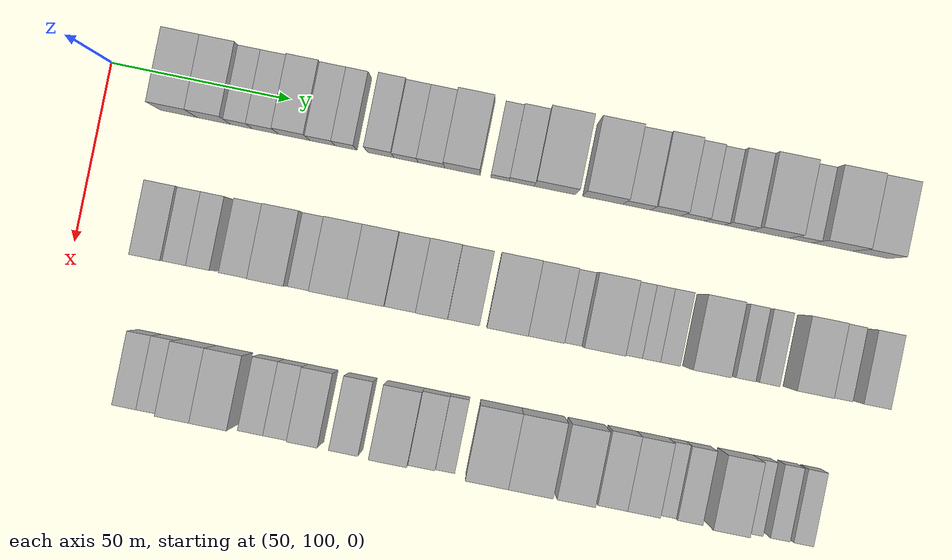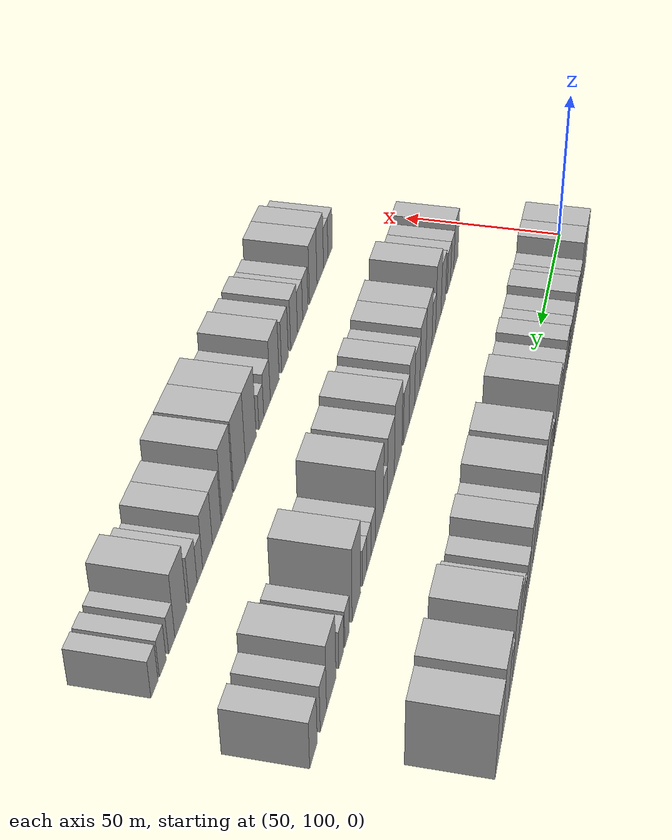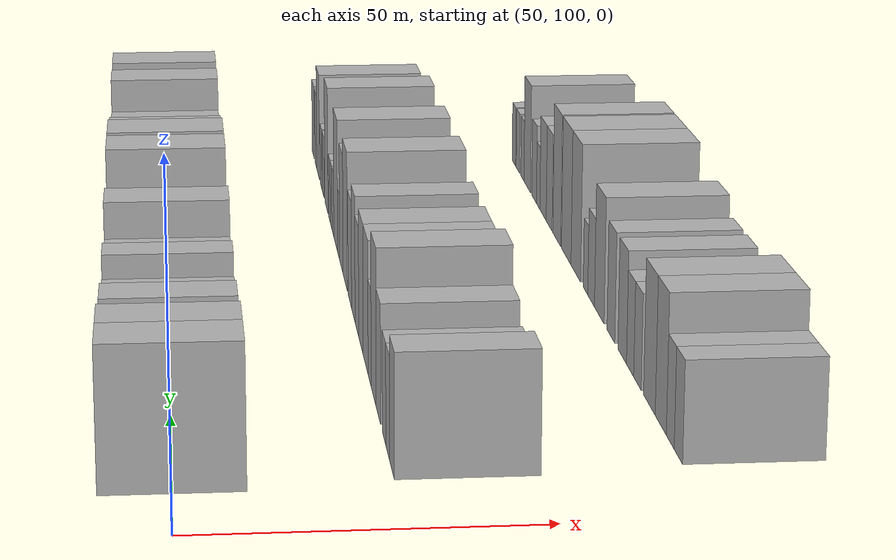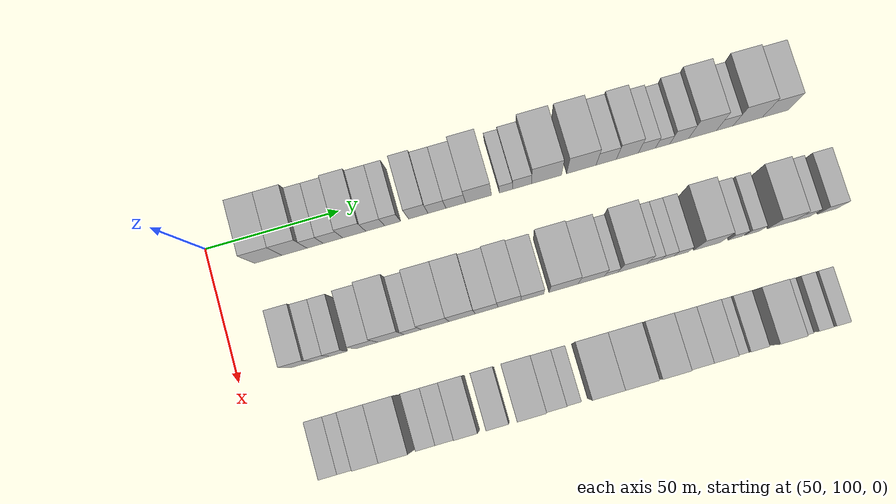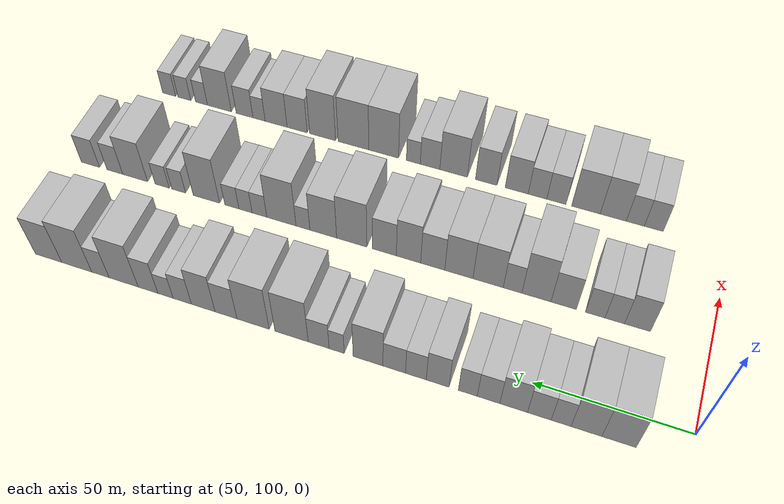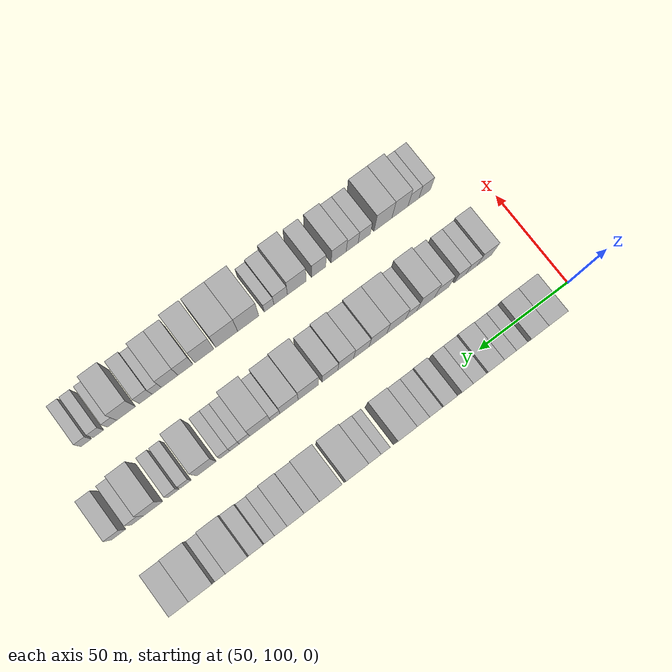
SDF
<sdf version="1.6">
 <world name="default">
  <model name="building_79">
   <static>1</static>
   <pose>50.0000 121.1111 0 0.000000 0.000000 0.000000</pose>
   <link name="link">
    <pose>0 0 10.50 0 0 0</pose>
    <collision name="collision"><geometry><box><size>20.0000 10.2820 21.0000</size></box></geometry></collision>
    <visual name="visual">
     <cast_shadows>0</cast_shadows>
     <geometry><box><size>20.0000 10.2820 21.0000</size></box></geometry>
     <material>
      <script>
       <uri>model://HANNAS_wall/materials/scripts</uri>
       <uri>model://HANNAS_wall/materials/textures</uri>
       <name>vrc/HANNAS_wall</name>
      </script>
     </material>
    </visual>
   </link>
  </model>
  <model name="building_80">
   <static>1</static>
   <pose>50.0000 130.9271 0 0.000000 0.000000 0.000000</pose>
   <link name="link">
    <pose>0 0 10.50 0 0 0</pose>
    <collision name="collision"><geometry><box><size>20.0000 9.3499 21.0000</size></box></geometry></collision>
    <visual name="visual">
     <cast_shadows>0</cast_shadows>
     <geometry><box><size>20.0000 9.3499 21.0000</size></box></geometry>
     <material>
      <script>
       <uri>model://HANNAS_wall/materials/scripts</uri>
       <uri>model://HANNAS_wall/materials/textures</uri>
       <name>vrc/HANNAS_wall</name>
      </script>
     </material>
    </visual>
   </link>
  </model>
  <model name="building_81">
   <static>1</static>
   <pose>50.0000 138.6464 0 0.000000 0.000000 0.000000</pose>
   <link name="link">
    <pose>0 0 7.50 0 0 0</pose>
    <collision name="collision"><geometry><box><size>20.0000 6.0887 15.0000</size></box></geometry></collision>
    <visual name="visual">
     <cast_shadows>0</cast_shadows>
     <geometry><box><size>20.0000 6.0887 15.0000</size></box></geometry>
     <material>
      <script>
       <uri>model://HANNAS_wall/materials/scripts</uri>
       <uri>model://HANNAS_wall/materials/textures</uri>
       <name>vrc/HANNAS_wall</name>
      </script>
     </material>
    </visual>
   </link>
  </model>
  <model name="building_82">
   <static>1</static>
   <pose>50.0000 145.3490 0 0.000000 0.000000 0.000000</pose>
   <link name="link">
    <pose>0 0 7.50 0 0 0</pose>
    <collision name="collision"><geometry><box><size>20.0000 7.3165 15.0000</size></box></geometry></collision>
    <visual name="visual">
     <cast_shadows>0</cast_shadows>
     <geometry><box><size>20.0000 7.3165 15.0000</size></box></geometry>
     <material>
      <script>
       <uri>model://HANNAS_wall/materials/scripts</uri>
       <uri>model://HANNAS_wall/materials/textures</uri>
       <name>vrc/HANNAS_wall</name>
      </script>
     </material>
    </visual>
   </link>
  </model>
  <model name="building_83">
   <static>1</static>
   <pose>50.0000 153.3246 0 0.000000 0.000000 0.000000</pose>
   <link name="link">
    <pose>0 0 9.00 0 0 0</pose>
    <collision name="collision"><geometry><box><size>20.0000 8.6346 18.0000</size></box></geometry></collision>
    <visual name="visual">
     <cast_shadows>0</cast_shadows>
     <geometry><box><size>20.0000 8.6346 18.0000</size></box></geometry>
     <material>
      <script>
       <uri>model://HANNAS_wall/materials/scripts</uri>
       <uri>model://HANNAS_wall/materials/textures</uri>
       <name>vrc/HANNAS_wall</name>
      </script>
     </material>
    </visual>
   </link>
  </model>
  <model name="building_84">
   <static>1</static>
   <pose>50.0000 161.2024 0 0.000000 0.000000 0.000000</pose>
   <link name="link">
    <pose>0 0 7.50 0 0 0</pose>
    <collision name="collision"><geometry><box><size>20.0000 7.1211 15.0000</size></box></geometry></collision>
    <visual name="visual">
     <cast_shadows>0</cast_shadows>
     <geometry><box><size>20.0000 7.1211 15.0000</size></box></geometry>
     <material>
      <script>
       <uri>model://HANNAS_wall/materials/scripts</uri>
       <uri>model://HANNAS_wall/materials/textures</uri>
       <name>vrc/HANNAS_wall</name>
      </script>
     </material>
    </visual>
   </link>
  </model>
  <model name="building_85">
   <static>1</static>
   <pose>50.0000 167.7683 0 0.000000 0.000000 0.000000</pose>
   <link name="link">
    <pose>0 0 7.50 0 0 0</pose>
    <collision name="collision"><geometry><box><size>20.0000 6.0107 15.0000</size></box></geometry></collision>
    <visual name="visual">
     <cast_shadows>0</cast_shadows>
     <geometry><box><size>20.0000 6.0107 15.0000</size></box></geometry>
     <material>
      <script>
       <uri>model://HANNAS_wall/materials/scripts</uri>
       <uri>model://HANNAS_wall/materials/textures</uri>
       <name>vrc/HANNAS_wall</name>
      </script>
     </material>
    </visual>
   </link>
  </model>
  <model name="building_86">
   <static>1</static>
   <pose>50.0000 177.4359 0 0.000000 0.000000 0.000000</pose>
   <link name="link">
    <pose>0 0 9.00 0 0 0</pose>
    <collision name="collision"><geometry><box><size>20.0000 7.3245 18.0000</size></box></geometry></collision>
    <visual name="visual">
     <cast_shadows>0</cast_shadows>
     <geometry><box><size>20.0000 7.3245 18.0000</size></box></geometry>
     <material>
      <script>
       <uri>model://HANNAS_wall/materials/scripts</uri>
       <uri>model://HANNAS_wall/materials/textures</uri>
       <name>vrc/HANNAS_wall</name>
      </script>
     </material>
    </visual>
   </link>
  </model>
  <model name="building_87">
   <static>1</static>
   <pose>50.0000 184.4694 0 0.000000 0.000000 0.000000</pose>
   <link name="link">
    <pose>0 0 7.50 0 0 0</pose>
    <collision name="collision"><geometry><box><size>20.0000 6.7424 15.0000</size></box></geometry></collision>
    <visual name="visual">
     <cast_shadows>0</cast_shadows>
     <geometry><box><size>20.0000 6.7424 15.0000</size></box></geometry>
     <material>
      <script>
       <uri>model://HANNAS_wall/materials/scripts</uri>
       <uri>model://HANNAS_wall/materials/textures</uri>
       <name>vrc/HANNAS_wall</name>
      </script>
     </material>
    </visual>
   </link>
  </model>
  <model name="building_88">
   <static>1</static>
   <pose>50.0000 191.5451 0 0.000000 0.000000 0.000000</pose>
   <link name="link">
    <pose>0 0 7.50 0 0 0</pose>
    <collision name="collision"><geometry><box><size>20.0000 7.4091 15.0000</size></box></geometry></collision>
    <visual name="visual">
     <cast_shadows>0</cast_shadows>
     <geometry><box><size>20.0000 7.4091 15.0000</size></box></geometry>
     <material>
      <script>
       <uri>model://HANNAS_wall/materials/scripts</uri>
       <uri>model://HANNAS_wall/materials/textures</uri>
       <name>vrc/HANNAS_wall</name>
      </script>
     </material>
    </visual>
   </link>
  </model>
  <model name="building_89">
   <static>1</static>
   <pose>50.0000 200.1826 0 0.000000 0.000000 0.000000</pose>
   <link name="link">
    <pose>0 0 10.50 0 0 0</pose>
    <collision name="collision"><geometry><box><size>20.0000 9.8660 21.0000</size></box></geometry></collision>
    <visual name="visual">
     <cast_shadows>0</cast_shadows>
     <geometry><box><size>20.0000 9.8660 21.0000</size></box></geometry>
     <material>
      <script>
       <uri>model://HANNAS_wall/materials/scripts</uri>
       <uri>model://HANNAS_wall/materials/textures</uri>
       <name>vrc/HANNAS_wall</name>
      </script>
     </material>
    </visual>
   </link>
  </model>
  <model name="building_90">
   <static>1</static>
   <pose>50.0000 210.6461 0 0.000000 0.000000 0.000000</pose>
   <link name="link">
    <pose>0 0 6.00 0 0 0</pose>
    <collision name="collision"><geometry><box><size>20.0000 5.0610 12.0000</size></box></geometry></collision>
    <visual name="visual">
     <cast_shadows>0</cast_shadows>
     <geometry><box><size>20.0000 5.0610 12.0000</size></box></geometry>
     <material>
      <script>
       <uri>model://HANNAS_wall/materials/scripts</uri>
       <uri>model://HANNAS_wall/materials/textures</uri>
       <name>vrc/HANNAS_wall</name>
      </script>
     </material>
    </visual>
   </link>
  </model>
  <model name="building_91">
   <static>1</static>
   <pose>50.0000 216.7208 0 0.000000 0.000000 0.000000</pose>
   <link name="link">
    <pose>0 0 7.50 0 0 0</pose>
    <collision name="collision"><geometry><box><size>20.0000 7.0883 15.0000</size></box></geometry></collision>
    <visual name="visual">
     <cast_shadows>0</cast_shadows>
     <geometry><box><size>20.0000 7.0883 15.0000</size></box></geometry>
     <material>
      <script>
       <uri>model://HANNAS_wall/materials/scripts</uri>
       <uri>model://HANNAS_wall/materials/textures</uri>
       <name>vrc/HANNAS_wall</name>
      </script>
     </material>
    </visual>
   </link>
  </model>
  <model name="building_92">
   <static>1</static>
   <pose>50.0000 225.9743 0 0.000000 0.000000 0.000000</pose>
   <link name="link">
    <pose>0 0 12.00 0 0 0</pose>
    <collision name="collision"><geometry><box><size>20.0000 11.4187 24.0000</size></box></geometry></collision>
    <visual name="visual">
     <cast_shadows>0</cast_shadows>
     <geometry><box><size>20.0000 11.4187 24.0000</size></box></geometry>
     <material>
      <script>
       <uri>model://HANNAS_wall/materials/scripts</uri>
       <uri>model://HANNAS_wall/materials/textures</uri>
       <name>vrc/HANNAS_wall</name>
      </script>
     </material>
    </visual>
   </link>
  </model>
  <model name="building_93">
   <static>1</static>
   <pose>50.0000 239.2948 0 0.000000 0.000000 0.000000</pose>
   <link name="link">
    <pose>0 0 12.00 0 0 0</pose>
    <collision name="collision"><geometry><box><size>20.0000 11.2223 24.0000</size></box></geometry></collision>
    <visual name="visual">
     <cast_shadows>0</cast_shadows>
     <geometry><box><size>20.0000 11.2223 24.0000</size></box></geometry>
     <material>
      <script>
       <uri>model://HANNAS_wall/materials/scripts</uri>
       <uri>model://HANNAS_wall/materials/textures</uri>
       <name>vrc/HANNAS_wall</name>
      </script>
     </material>
    </visual>
   </link>
  </model>
  <model name="building_94">
   <static>1</static>
   <pose>50.0000 248.7724 0 0.000000 0.000000 0.000000</pose>
   <link name="link">
    <pose>0 0 9.00 0 0 0</pose>
    <collision name="collision"><geometry><box><size>20.0000 7.7330 18.0000</size></box></geometry></collision>
    <visual name="visual">
     <cast_shadows>0</cast_shadows>
     <geometry><box><size>20.0000 7.7330 18.0000</size></box></geometry>
     <material>
      <script>
       <uri>model://HANNAS_wall/materials/scripts</uri>
       <uri>model://HANNAS_wall/materials/textures</uri>
       <name>vrc/HANNAS_wall</name>
      </script>
     </material>
    </visual>
   </link>
  </model>
  <model name="building_95">
   <static>1</static>
   <pose>50.0000 256.8523 0 0.000000 0.000000 0.000000</pose>
   <link name="link">
    <pose>0 0 10.50 0 0 0</pose>
    <collision name="collision"><geometry><box><size>20.0000 8.4268 21.0000</size></box></geometry></collision>
    <visual name="visual">
     <cast_shadows>0</cast_shadows>
     <geometry><box><size>20.0000 8.4268 21.0000</size></box></geometry>
     <material>
      <script>
       <uri>model://HANNAS_wall/materials/scripts</uri>
       <uri>model://HANNAS_wall/materials/textures</uri>
       <name>vrc/HANNAS_wall</name>
      </script>
     </material>
    </visual>
   </link>
  </model>
  <model name="building_96">
   <static>1</static>
   <pose>50.0000 264.3594 0 0.000000 0.000000 0.000000</pose>
   <link name="link">
    <pose>0 0 7.50 0 0 0</pose>
    <collision name="collision"><geometry><box><size>20.0000 6.5873 15.0000</size></box></geometry></collision>
    <visual name="visual">
     <cast_shadows>0</cast_shadows>
     <geometry><box><size>20.0000 6.5873 15.0000</size></box></geometry>
     <material>
      <script>
       <uri>model://HANNAS_wall/materials/scripts</uri>
       <uri>model://HANNAS_wall/materials/textures</uri>
       <name>vrc/HANNAS_wall</name>
      </script>
     </material>
    </visual>
   </link>
  </model>
  <model name="building_97">
   <static>1</static>
   <pose>50.0000 270.4090 0 0.000000 0.000000 0.000000</pose>
   <link name="link">
    <pose>0 0 6.00 0 0 0</pose>
    <collision name="collision"><geometry><box><size>20.0000 5.5120 12.0000</size></box></geometry></collision>
    <visual name="visual">
     <cast_shadows>0</cast_shadows>
     <geometry><box><size>20.0000 5.5120 12.0000</size></box></geometry>
     <material>
      <script>
       <uri>model://HANNAS_wall/materials/scripts</uri>
       <uri>model://HANNAS_wall/materials/textures</uri>
       <name>vrc/HANNAS_wall</name>
      </script>
     </material>
    </visual>
   </link>
  </model>
  <model name="building_98">
   <static>1</static>
   <pose>50.0000 276.7768 0 0.000000 0.000000 0.000000</pose>
   <link name="link">
    <pose>0 0 9.00 0 0 0</pose>
    <collision name="collision"><geometry><box><size>20.0000 7.2236 18.0000</size></box></geometry></collision>
    <visual name="visual">
     <cast_shadows>0</cast_shadows>
     <geometry><box><size>20.0000 7.2236 18.0000</size></box></geometry>
     <material>
      <script>
       <uri>model://HANNAS_wall/materials/scripts</uri>
       <uri>model://HANNAS_wall/materials/textures</uri>
       <name>vrc/HANNAS_wall</name>
      </script>
     </material>
    </visual>
   </link>
  </model>
  <model name="building_99">
   <static>1</static>
   <pose>50.0000 285.7733 0 0.000000 0.000000 0.000000</pose>
   <link name="link">
    <pose>0 0 12.00 0 0 0</pose>
    <collision name="collision"><geometry><box><size>20.0000 10.7693 24.0000</size></box></geometry></collision>
    <visual name="visual">
     <cast_shadows>0</cast_shadows>
     <geometry><box><size>20.0000 10.7693 24.0000</size></box></geometry>
     <material>
      <script>
       <uri>model://HANNAS_wall/materials/scripts</uri>
       <uri>model://HANNAS_wall/materials/textures</uri>
       <name>vrc/HANNAS_wall</name>
      </script>
     </material>
    </visual>
   </link>
  </model>
  <model name="building_100">
   <static>1</static>
   <pose>50.0000 294.3728 0 0.000000 0.000000 0.000000</pose>
   <link name="link">
    <pose>0 0 7.50 0 0 0</pose>
    <collision name="collision"><geometry><box><size>20.0000 6.4296 15.0000</size></box></geometry></collision>
    <visual name="visual">
     <cast_shadows>0</cast_shadows>
     <geometry><box><size>20.0000 6.4296 15.0000</size></box></geometry>
     <material>
      <script>
       <uri>model://HANNAS_wall/materials/scripts</uri>
       <uri>model://HANNAS_wall/materials/textures</uri>
       <name>vrc/HANNAS_wall</name>
      </script>
     </material>
    </visual>
   </link>
  </model>
  <model name="building_101">
   <static>1</static>
   <pose>50.0000 303.2512 0 0.000000 0.000000 0.000000</pose>
   <link name="link">
    <pose>0 0 12.00 0 0 0</pose>
    <collision name="collision"><geometry><box><size>20.0000 11.3271 24.0000</size></box></geometry></collision>
    <visual name="visual">
     <cast_shadows>0</cast_shadows>
     <geometry><box><size>20.0000 11.3271 24.0000</size></box></geometry>
     <material>
      <script>
       <uri>model://HANNAS_wall/materials/scripts</uri>
       <uri>model://HANNAS_wall/materials/textures</uri>
       <name>vrc/HANNAS_wall</name>
      </script>
     </material>
    </visual>
   </link>
  </model>
  <model name="building_102">
   <static>1</static>
   <pose>50.0000 313.9579 0 0.000000 0.000000 0.000000</pose>
   <link name="link">
    <pose>0 0 10.50 0 0 0</pose>
    <collision name="collision"><geometry><box><size>20.0000 10.0864 21.0000</size></box></geometry></collision>
    <visual name="visual">
     <cast_shadows>0</cast_shadows>
     <geometry><box><size>20.0000 10.0864 21.0000</size></box></geometry>
     <material>
      <script>
       <uri>model://HANNAS_wall/materials/scripts</uri>
       <uri>model://HANNAS_wall/materials/textures</uri>
       <name>vrc/HANNAS_wall</name>
      </script>
     </material>
    </visual>
   </link>
  </model>
  <model name="building_220">
   <static>1</static>
   <pose>90.0000 123.2064 0 0.000000 0.000000 0.000000</pose>
   <link name="link">
    <pose>0 0 9.00 0 0 0</pose>
    <collision name="collision"><geometry><box><size>20.0000 8.3586 18.0000</size></box></geometry></collision>
    <visual name="visual">
     <cast_shadows>0</cast_shadows>
     <geometry><box><size>20.0000 8.3586 18.0000</size></box></geometry>
     <material>
      <script>
       <uri>model://HANNAS_wall/materials/scripts</uri>
       <uri>model://HANNAS_wall/materials/textures</uri>
       <name>vrc/HANNAS_wall</name>
      </script>
     </material>
    </visual>
   </link>
  </model>
  <model name="building_221">
   <static>1</static>
   <pose>90.0000 130.5374 0 0.000000 0.000000 0.000000</pose>
   <link name="link">
    <pose>0 0 7.50 0 0 0</pose>
    <collision name="collision"><geometry><box><size>20.0000 6.3033 15.0000</size></box></geometry></collision>
    <visual name="visual">
     <cast_shadows>0</cast_shadows>
     <geometry><box><size>20.0000 6.3033 15.0000</size></box></geometry>
     <material>
      <script>
       <uri>model://HANNAS_wall/materials/scripts</uri>
       <uri>model://HANNAS_wall/materials/textures</uri>
       <name>vrc/HANNAS_wall</name>
      </script>
     </material>
    </visual>
   </link>
  </model>
  <model name="building_222">
   <static>1</static>
   <pose>90.0000 136.8858 0 0.000000 0.000000 0.000000</pose>
   <link name="link">
    <pose>0 0 7.50 0 0 0</pose>
    <collision name="collision"><geometry><box><size>20.0000 6.3935 15.0000</size></box></geometry></collision>
    <visual name="visual">
     <cast_shadows>0</cast_shadows>
     <geometry><box><size>20.0000 6.3935 15.0000</size></box></geometry>
     <material>
      <script>
       <uri>model://HANNAS_wall/materials/scripts</uri>
       <uri>model://HANNAS_wall/materials/textures</uri>
       <name>vrc/HANNAS_wall</name>
      </script>
     </material>
    </visual>
   </link>
  </model>
  <model name="building_223">
   <static>1</static>
   <pose>90.0000 147.2890 0 0.000000 0.000000 0.000000</pose>
   <link name="link">
    <pose>0 0 9.00 0 0 0</pose>
    <collision name="collision"><geometry><box><size>20.0000 8.4129 18.0000</size></box></geometry></collision>
    <visual name="visual">
     <cast_shadows>0</cast_shadows>
     <geometry><box><size>20.0000 8.4129 18.0000</size></box></geometry>
     <material>
      <script>
       <uri>model://HANNAS_wall/materials/scripts</uri>
       <uri>model://HANNAS_wall/materials/textures</uri>
       <name>vrc/HANNAS_wall</name>
      </script>
     </material>
    </visual>
   </link>
  </model>
  <model name="building_224">
   <static>1</static>
   <pose>90.0000 156.3557 0 0.000000 0.000000 0.000000</pose>
   <link name="link">
    <pose>0 0 12.00 0 0 0</pose>
    <collision name="collision"><geometry><box><size>20.0000 9.7206 24.0000</size></box></geometry></collision>
    <visual name="visual">
     <cast_shadows>0</cast_shadows>
     <geometry><box><size>20.0000 9.7206 24.0000</size></box></geometry>
     <material>
      <script>
       <uri>model://HANNAS_wall/materials/scripts</uri>
       <uri>model://HANNAS_wall/materials/textures</uri>
       <name>vrc/HANNAS_wall</name>
      </script>
     </material>
    </visual>
   </link>
  </model>
  <model name="building_225">
   <static>1</static>
   <pose>90.0000 164.3611 0 0.000000 0.000000 0.000000</pose>
   <link name="link">
    <pose>0 0 7.50 0 0 0</pose>
    <collision name="collision"><geometry><box><size>20.0000 6.2902 15.0000</size></box></geometry></collision>
    <visual name="visual">
     <cast_shadows>0</cast_shadows>
     <geometry><box><size>20.0000 6.2902 15.0000</size></box></geometry>
     <material>
      <script>
       <uri>model://HANNAS_wall/materials/scripts</uri>
       <uri>model://HANNAS_wall/materials/textures</uri>
       <name>vrc/HANNAS_wall</name>
      </script>
     </material>
    </visual>
   </link>
  </model>
  <model name="building_226">
   <static>1</static>
   <pose>90.0000 172.6828 0 0.000000 0.000000 0.000000</pose>
   <link name="link">
    <pose>0 0 10.50 0 0 0</pose>
    <collision name="collision"><geometry><box><size>20.0000 10.3533 21.0000</size></box></geometry></collision>
    <visual name="visual">
     <cast_shadows>0</cast_shadows>
     <geometry><box><size>20.0000 10.3533 21.0000</size></box></geometry>
     <material>
      <script>
       <uri>model://HANNAS_wall/materials/scripts</uri>
       <uri>model://HANNAS_wall/materials/textures</uri>
       <name>vrc/HANNAS_wall</name>
      </script>
     </material>
    </visual>
   </link>
  </model>
  <model name="building_227">
   <static>1</static>
   <pose>90.0000 182.7283 0 0.000000 0.000000 0.000000</pose>
   <link name="link">
    <pose>0 0 10.50 0 0 0</pose>
    <collision name="collision"><geometry><box><size>20.0000 9.7376 21.0000</size></box></geometry></collision>
    <visual name="visual">
     <cast_shadows>0</cast_shadows>
     <geometry><box><size>20.0000 9.7376 21.0000</size></box></geometry>
     <material>
      <script>
       <uri>model://HANNAS_wall/materials/scripts</uri>
       <uri>model://HANNAS_wall/materials/textures</uri>
       <name>vrc/HANNAS_wall</name>
      </script>
     </material>
    </visual>
   </link>
  </model>
  <model name="building_228">
   <static>1</static>
   <pose>90.0000 191.8028 0 0.000000 0.000000 0.000000</pose>
   <link name="link">
    <pose>0 0 9.00 0 0 0</pose>
    <collision name="collision"><geometry><box><size>20.0000 8.4115 18.0000</size></box></geometry></collision>
    <visual name="visual">
     <cast_shadows>0</cast_shadows>
     <geometry><box><size>20.0000 8.4115 18.0000</size></box></geometry>
     <material>
      <script>
       <uri>model://HANNAS_wall/materials/scripts</uri>
       <uri>model://HANNAS_wall/materials/textures</uri>
       <name>vrc/HANNAS_wall</name>
      </script>
     </material>
    </visual>
   </link>
  </model>
  <model name="building_229">
   <static>1</static>
   <pose>90.0000 200.2996 0 0.000000 0.000000 0.000000</pose>
   <link name="link">
    <pose>0 0 10.50 0 0 0</pose>
    <collision name="collision"><geometry><box><size>20.0000 8.5821 21.0000</size></box></geometry></collision>
    <visual name="visual">
     <cast_shadows>0</cast_shadows>
     <geometry><box><size>20.0000 8.5821 21.0000</size></box></geometry>
     <material>
      <script>
       <uri>model://HANNAS_wall/materials/scripts</uri>
       <uri>model://HANNAS_wall/materials/textures</uri>
       <name>vrc/HANNAS_wall</name>
      </script>
     </material>
    </visual>
   </link>
  </model>
  <model name="building_230">
   <static>1</static>
   <pose>90.0000 208.8483 0 0.000000 0.000000 0.000000</pose>
   <link name="link">
    <pose>0 0 9.00 0 0 0</pose>
    <collision name="collision"><geometry><box><size>20.0000 8.5152 18.0000</size></box></geometry></collision>
    <visual name="visual">
     <cast_shadows>0</cast_shadows>
     <geometry><box><size>20.0000 8.5152 18.0000</size></box></geometry>
     <material>
      <script>
       <uri>model://HANNAS_wall/materials/scripts</uri>
       <uri>model://HANNAS_wall/materials/textures</uri>
       <name>vrc/HANNAS_wall</name>
      </script>
     </material>
    </visual>
   </link>
  </model>
  <model name="building_231">
   <static>1</static>
   <pose>90.0000 220.5710 0 0.000000 0.000000 0.000000</pose>
   <link name="link">
    <pose>0 0 12.00 0 0 0</pose>
    <collision name="collision"><geometry><box><size>20.0000 10.9302 24.0000</size></box></geometry></collision>
    <visual name="visual">
     <cast_shadows>0</cast_shadows>
     <geometry><box><size>20.0000 10.9302 24.0000</size></box></geometry>
     <material>
      <script>
       <uri>model://HANNAS_wall/materials/scripts</uri>
       <uri>model://HANNAS_wall/materials/textures</uri>
       <name>vrc/HANNAS_wall</name>
      </script>
     </material>
    </visual>
   </link>
  </model>
  <model name="building_232">
   <static>1</static>
   <pose>90.0000 230.9264 0 0.000000 0.000000 0.000000</pose>
   <link name="link">
    <pose>0 0 10.50 0 0 0</pose>
    <collision name="collision"><geometry><box><size>20.0000 9.7805 21.0000</size></box></geometry></collision>
    <visual name="visual">
     <cast_shadows>0</cast_shadows>
     <geometry><box><size>20.0000 9.7805 21.0000</size></box></geometry>
     <material>
      <script>
       <uri>model://HANNAS_wall/materials/scripts</uri>
       <uri>model://HANNAS_wall/materials/textures</uri>
       <name>vrc/HANNAS_wall</name>
      </script>
     </material>
    </visual>
   </link>
  </model>
  <model name="building_233">
   <static>1</static>
   <pose>90.0000 238.3762 0 0.000000 0.000000 0.000000</pose>
   <link name="link">
    <pose>0 0 6.00 0 0 0</pose>
    <collision name="collision"><geometry><box><size>20.0000 5.1191 12.0000</size></box></geometry></collision>
    <visual name="visual">
     <cast_shadows>0</cast_shadows>
     <geometry><box><size>20.0000 5.1191 12.0000</size></box></geometry>
     <material>
      <script>
       <uri>model://HANNAS_wall/materials/scripts</uri>
       <uri>model://HANNAS_wall/materials/textures</uri>
       <name>vrc/HANNAS_wall</name>
      </script>
     </material>
    </visual>
   </link>
  </model>
  <model name="building_234">
   <static>1</static>
   <pose>90.0000 246.3861 0 0.000000 0.000000 0.000000</pose>
   <link name="link">
    <pose>0 0 12.00 0 0 0</pose>
    <collision name="collision"><geometry><box><size>20.0000 10.9008 24.0000</size></box></geometry></collision>
    <visual name="visual">
     <cast_shadows>0</cast_shadows>
     <geometry><box><size>20.0000 10.9008 24.0000</size></box></geometry>
     <material>
      <script>
       <uri>model://HANNAS_wall/materials/scripts</uri>
       <uri>model://HANNAS_wall/materials/textures</uri>
       <name>vrc/HANNAS_wall</name>
      </script>
     </material>
    </visual>
   </link>
  </model>
  <model name="building_235">
   <static>1</static>
   <pose>90.0000 254.6111 0 0.000000 0.000000 0.000000</pose>
   <link name="link">
    <pose>0 0 6.00 0 0 0</pose>
    <collision name="collision"><geometry><box><size>20.0000 5.5491 12.0000</size></box></geometry></collision>
    <visual name="visual">
     <cast_shadows>0</cast_shadows>
     <geometry><box><size>20.0000 5.5491 12.0000</size></box></geometry>
     <material>
      <script>
       <uri>model://HANNAS_wall/materials/scripts</uri>
       <uri>model://HANNAS_wall/materials/textures</uri>
       <name>vrc/HANNAS_wall</name>
      </script>
     </material>
    </visual>
   </link>
  </model>
  <model name="building_236">
   <static>1</static>
   <pose>90.0000 259.8563 0 0.000000 0.000000 0.000000</pose>
   <link name="link">
    <pose>0 0 6.00 0 0 0</pose>
    <collision name="collision"><geometry><box><size>20.0000 4.9412 12.0000</size></box></geometry></collision>
    <visual name="visual">
     <cast_shadows>0</cast_shadows>
     <geometry><box><size>20.0000 4.9412 12.0000</size></box></geometry>
     <material>
      <script>
       <uri>model://HANNAS_wall/materials/scripts</uri>
       <uri>model://HANNAS_wall/materials/textures</uri>
       <name>vrc/HANNAS_wall</name>
      </script>
     </material>
    </visual>
   </link>
  </model>
  <model name="building_237">
   <static>1</static>
   <pose>90.0000 265.0188 0 0.000000 0.000000 0.000000</pose>
   <link name="link">
    <pose>0 0 6.00 0 0 0</pose>
    <collision name="collision"><geometry><box><size>20.0000 5.3839 12.0000</size></box></geometry></collision>
    <visual name="visual">
     <cast_shadows>0</cast_shadows>
     <geometry><box><size>20.0000 5.3839 12.0000</size></box></geometry>
     <material>
      <script>
       <uri>model://HANNAS_wall/materials/scripts</uri>
       <uri>model://HANNAS_wall/materials/textures</uri>
       <name>vrc/HANNAS_wall</name>
      </script>
     </material>
    </visual>
   </link>
  </model>
  <model name="building_238">
   <static>1</static>
   <pose>90.0000 274.7908 0 0.000000 0.000000 0.000000</pose>
   <link name="link">
    <pose>0 0 12.00 0 0 0</pose>
    <collision name="collision"><geometry><box><size>20.0000 10.1601 24.0000</size></box></geometry></collision>
    <visual name="visual">
     <cast_shadows>0</cast_shadows>
     <geometry><box><size>20.0000 10.1601 24.0000</size></box></geometry>
     <material>
      <script>
       <uri>model://HANNAS_wall/materials/scripts</uri>
       <uri>model://HANNAS_wall/materials/textures</uri>
       <name>vrc/HANNAS_wall</name>
      </script>
     </material>
    </visual>
   </link>
  </model>
  <model name="building_239">
   <static>1</static>
   <pose>90.0000 285.5514 0 0.000000 0.000000 0.000000</pose>
   <link name="link">
    <pose>0 0 6.00 0 0 0</pose>
    <collision name="collision"><geometry><box><size>20.0000 5.3610 12.0000</size></box></geometry></collision>
    <visual name="visual">
     <cast_shadows>0</cast_shadows>
     <geometry><box><size>20.0000 5.3610 12.0000</size></box></geometry>
     <material>
      <script>
       <uri>model://HANNAS_wall/materials/scripts</uri>
       <uri>model://HANNAS_wall/materials/textures</uri>
       <name>vrc/HANNAS_wall</name>
      </script>
     </material>
    </visual>
   </link>
  </model>
  <model name="building_240">
   <static>1</static>
   <pose>90.0000 291.9992 0 0.000000 0.000000 0.000000</pose>
   <link name="link">
    <pose>0 0 6.00 0 0 0</pose>
    <collision name="collision"><geometry><box><size>20.0000 5.5346 12.0000</size></box></geometry></collision>
    <visual name="visual">
     <cast_shadows>0</cast_shadows>
     <geometry><box><size>20.0000 5.5346 12.0000</size></box></geometry>
     <material>
      <script>
       <uri>model://HANNAS_wall/materials/scripts</uri>
       <uri>model://HANNAS_wall/materials/textures</uri>
       <name>vrc/HANNAS_wall</name>
      </script>
     </material>
    </visual>
   </link>
  </model>
  <model name="building_241">
   <static>1</static>
   <pose>90.0000 302.6883 0 0.000000 0.000000 0.000000</pose>
   <link name="link">
    <pose>0 0 10.50 0 0 0</pose>
    <collision name="collision"><geometry><box><size>20.0000 9.8436 21.0000</size></box></geometry></collision>
    <visual name="visual">
     <cast_shadows>0</cast_shadows>
     <geometry><box><size>20.0000 9.8436 21.0000</size></box></geometry>
     <material>
      <script>
       <uri>model://HANNAS_wall/materials/scripts</uri>
       <uri>model://HANNAS_wall/materials/textures</uri>
       <name>vrc/HANNAS_wall</name>
      </script>
     </material>
    </visual>
   </link>
  </model>
  <model name="building_242">
   <static>1</static>
   <pose>90.0000 310.7760 0 0.000000 0.000000 0.000000</pose>
   <link name="link">
    <pose>0 0 7.50 0 0 0</pose>
    <collision name="collision"><geometry><box><size>20.0000 6.3318 15.0000</size></box></geometry></collision>
    <visual name="visual">
     <cast_shadows>0</cast_shadows>
     <geometry><box><size>20.0000 6.3318 15.0000</size></box></geometry>
     <material>
      <script>
       <uri>model://HANNAS_wall/materials/scripts</uri>
       <uri>model://HANNAS_wall/materials/textures</uri>
       <name>vrc/HANNAS_wall</name>
      </script>
     </material>
    </visual>
   </link>
  </model>
  <model name="building_243">
   <static>1</static>
   <pose>90.0000 320.6049 0 0.000000 0.000000 0.000000</pose>
   <link name="link">
    <pose>0 0 7.50 0 0 0</pose>
    <collision name="collision"><geometry><box><size>20.0000 7.3259 15.0000</size></box></geometry></collision>
    <visual name="visual">
     <cast_shadows>0</cast_shadows>
     <geometry><box><size>20.0000 7.3259 15.0000</size></box></geometry>
     <material>
      <script>
       <uri>model://HANNAS_wall/materials/scripts</uri>
       <uri>model://HANNAS_wall/materials/textures</uri>
       <name>vrc/HANNAS_wall</name>
      </script>
     </material>
    </visual>
   </link>
  </model>
  <model name="building_355">
   <static>1</static>
   <pose>130.0000 125.1906 0 0.000000 0.000000 0.000000</pose>
   <link name="link">
    <pose>0 0 7.50 0 0 0</pose>
    <collision name="collision"><geometry><box><size>20.0000 6.5130 15.0000</size></box></geometry></collision>
    <visual name="visual">
     <cast_shadows>0</cast_shadows>
     <geometry><box><size>20.0000 6.5130 15.0000</size></box></geometry>
     <material>
      <script>
       <uri>model://HANNAS_wall/materials/scripts</uri>
       <uri>model://HANNAS_wall/materials/textures</uri>
       <name>vrc/HANNAS_wall</name>
      </script>
     </material>
    </visual>
   </link>
  </model>
  <model name="building_356">
   <static>1</static>
   <pose>130.0000 131.5645 0 0.000000 0.000000 0.000000</pose>
   <link name="link">
    <pose>0 0 7.50 0 0 0</pose>
    <collision name="collision"><geometry><box><size>20.0000 6.2347 15.0000</size></box></geometry></collision>
    <visual name="visual">
     <cast_shadows>0</cast_shadows>
     <geometry><box><size>20.0000 6.2347 15.0000</size></box></geometry>
     <material>
      <script>
       <uri>model://HANNAS_wall/materials/scripts</uri>
       <uri>model://HANNAS_wall/materials/textures</uri>
       <name>vrc/HANNAS_wall</name>
      </script>
     </material>
    </visual>
   </link>
  </model>
  <model name="building_357">
   <static>1</static>
   <pose>130.0000 139.2403 0 0.000000 0.000000 0.000000</pose>
   <link name="link">
    <pose>0 0 10.50 0 0 0</pose>
    <collision name="collision"><geometry><box><size>20.0000 9.1169 21.0000</size></box></geometry></collision>
    <visual name="visual">
     <cast_shadows>0</cast_shadows>
     <geometry><box><size>20.0000 9.1169 21.0000</size></box></geometry>
     <material>
      <script>
       <uri>model://HANNAS_wall/materials/scripts</uri>
       <uri>model://HANNAS_wall/materials/textures</uri>
       <name>vrc/HANNAS_wall</name>
      </script>
     </material>
    </visual>
   </link>
  </model>
  <model name="building_358">
   <static>1</static>
   <pose>130.0000 148.8341 0 0.000000 0.000000 0.000000</pose>
   <link name="link">
    <pose>0 0 10.50 0 0 0</pose>
    <collision name="collision"><geometry><box><size>20.0000 10.0709 21.0000</size></box></geometry></collision>
    <visual name="visual">
     <cast_shadows>0</cast_shadows>
     <geometry><box><size>20.0000 10.0709 21.0000</size></box></geometry>
     <material>
      <script>
       <uri>model://HANNAS_wall/materials/scripts</uri>
       <uri>model://HANNAS_wall/materials/textures</uri>
       <name>vrc/HANNAS_wall</name>
      </script>
     </material>
    </visual>
   </link>
  </model>
  <model name="building_359">
   <static>1</static>
   <pose>130.0000 159.2916 0 0.000000 0.000000 0.000000</pose>
   <link name="link">
    <pose>0 0 7.50 0 0 0</pose>
    <collision name="collision"><geometry><box><size>20.0000 6.8441 15.0000</size></box></geometry></collision>
    <visual name="visual">
     <cast_shadows>0</cast_shadows>
     <geometry><box><size>20.0000 6.8441 15.0000</size></box></geometry>
     <material>
      <script>
       <uri>model://HANNAS_wall/materials/scripts</uri>
       <uri>model://HANNAS_wall/materials/textures</uri>
       <name>vrc/HANNAS_wall</name>
      </script>
     </material>
    </visual>
   </link>
  </model>
  <model name="building_360">
   <static>1</static>
   <pose>130.0000 166.0634 0 0.000000 0.000000 0.000000</pose>
   <link name="link">
    <pose>0 0 7.50 0 0 0</pose>
    <collision name="collision"><geometry><box><size>20.0000 6.6996 15.0000</size></box></geometry></collision>
    <visual name="visual">
     <cast_shadows>0</cast_shadows>
     <geometry><box><size>20.0000 6.6996 15.0000</size></box></geometry>
     <material>
      <script>
       <uri>model://HANNAS_wall/materials/scripts</uri>
       <uri>model://HANNAS_wall/materials/textures</uri>
       <name>vrc/HANNAS_wall</name>
      </script>
     </material>
    </visual>
   </link>
  </model>
  <model name="building_361">
   <static>1</static>
   <pose>130.0000 173.5839 0 0.000000 0.000000 0.000000</pose>
   <link name="link">
    <pose>0 0 9.00 0 0 0</pose>
    <collision name="collision"><geometry><box><size>20.0000 8.3412 18.0000</size></box></geometry></collision>
    <visual name="visual">
     <cast_shadows>0</cast_shadows>
     <geometry><box><size>20.0000 8.3412 18.0000</size></box></geometry>
     <material>
      <script>
       <uri>model://HANNAS_wall/materials/scripts</uri>
       <uri>model://HANNAS_wall/materials/textures</uri>
       <name>vrc/HANNAS_wall</name>
      </script>
     </material>
    </visual>
   </link>
  </model>
  <model name="building_362">
   <static>1</static>
   <pose>130.0000 184.7025 0 0.000000 0.000000 0.000000</pose>
   <link name="link">
    <pose>0 0 9.00 0 0 0</pose>
    <collision name="collision"><geometry><box><size>20.0000 7.8959 18.0000</size></box></geometry></collision>
    <visual name="visual">
     <cast_shadows>0</cast_shadows>
     <geometry><box><size>20.0000 7.8959 18.0000</size></box></geometry>
     <material>
      <script>
       <uri>model://HANNAS_wall/materials/scripts</uri>
       <uri>model://HANNAS_wall/materials/textures</uri>
       <name>vrc/HANNAS_wall</name>
      </script>
     </material>
    </visual>
   </link>
  </model>
  <model name="building_363">
   <static>1</static>
   <pose>130.0000 196.7767 0 0.000000 0.000000 0.000000</pose>
   <link name="link">
    <pose>0 0 10.50 0 0 0</pose>
    <collision name="collision"><geometry><box><size>20.0000 10.2525 21.0000</size></box></geometry></collision>
    <visual name="visual">
     <cast_shadows>0</cast_shadows>
     <geometry><box><size>20.0000 10.2525 21.0000</size></box></geometry>
     <material>
      <script>
       <uri>model://HANNAS_wall/materials/scripts</uri>
       <uri>model://HANNAS_wall/materials/textures</uri>
       <name>vrc/HANNAS_wall</name>
      </script>
     </material>
    </visual>
   </link>
  </model>
  <model name="building_364">
   <static>1</static>
   <pose>130.0000 205.5839 0 0.000000 0.000000 0.000000</pose>
   <link name="link">
    <pose>0 0 7.50 0 0 0</pose>
    <collision name="collision"><geometry><box><size>20.0000 7.3619 15.0000</size></box></geometry></collision>
    <visual name="visual">
     <cast_shadows>0</cast_shadows>
     <geometry><box><size>20.0000 7.3619 15.0000</size></box></geometry>
     <material>
      <script>
       <uri>model://HANNAS_wall/materials/scripts</uri>
       <uri>model://HANNAS_wall/materials/textures</uri>
       <name>vrc/HANNAS_wall</name>
      </script>
     </material>
    </visual>
   </link>
  </model>
  <model name="building_365">
   <static>1</static>
   <pose>130.0000 211.8919 0 0.000000 0.000000 0.000000</pose>
   <link name="link">
    <pose>0 0 6.00 0 0 0</pose>
    <collision name="collision"><geometry><box><size>20.0000 5.2543 12.0000</size></box></geometry></collision>
    <visual name="visual">
     <cast_shadows>0</cast_shadows>
     <geometry><box><size>20.0000 5.2543 12.0000</size></box></geometry>
     <material>
      <script>
       <uri>model://HANNAS_wall/materials/scripts</uri>
       <uri>model://HANNAS_wall/materials/textures</uri>
       <name>vrc/HANNAS_wall</name>
      </script>
     </material>
    </visual>
   </link>
  </model>
  <model name="building_366">
   <static>1</static>
   <pose>130.0000 223.2347 0 0.000000 0.000000 0.000000</pose>
   <link name="link">
    <pose>0 0 12.00 0 0 0</pose>
    <collision name="collision"><geometry><box><size>20.0000 11.4312 24.0000</size></box></geometry></collision>
    <visual name="visual">
     <cast_shadows>0</cast_shadows>
     <geometry><box><size>20.0000 11.4312 24.0000</size></box></geometry>
     <material>
      <script>
       <uri>model://HANNAS_wall/materials/scripts</uri>
       <uri>model://HANNAS_wall/materials/textures</uri>
       <name>vrc/HANNAS_wall</name>
      </script>
     </material>
    </visual>
   </link>
  </model>
  <model name="building_367">
   <static>1</static>
   <pose>130.0000 234.8953 0 0.000000 0.000000 0.000000</pose>
   <link name="link">
    <pose>0 0 12.00 0 0 0</pose>
    <collision name="collision"><geometry><box><size>20.0000 11.8900 24.0000</size></box></geometry></collision>
    <visual name="visual">
     <cast_shadows>0</cast_shadows>
     <geometry><box><size>20.0000 11.8900 24.0000</size></box></geometry>
     <material>
      <script>
       <uri>model://HANNAS_wall/materials/scripts</uri>
       <uri>model://HANNAS_wall/materials/textures</uri>
       <name>vrc/HANNAS_wall</name>
      </script>
     </material>
    </visual>
   </link>
  </model>
  <model name="building_368">
   <static>1</static>
   <pose>130.0000 246.9262 0 0.000000 0.000000 0.000000</pose>
   <link name="link">
    <pose>0 0 12.00 0 0 0</pose>
    <collision name="collision"><geometry><box><size>20.0000 10.1720 24.0000</size></box></geometry></collision>
    <visual name="visual">
     <cast_shadows>0</cast_shadows>
     <geometry><box><size>20.0000 10.1720 24.0000</size></box></geometry>
     <material>
      <script>
       <uri>model://HANNAS_wall/materials/scripts</uri>
       <uri>model://HANNAS_wall/materials/textures</uri>
       <name>vrc/HANNAS_wall</name>
      </script>
     </material>
    </visual>
   </link>
  </model>
  <model name="building_369">
   <static>1</static>
   <pose>130.0000 257.0240 0 0.000000 0.000000 0.000000</pose>
   <link name="link">
    <pose>0 0 9.00 0 0 0</pose>
    <collision name="collision"><geometry><box><size>20.0000 8.0236 18.0000</size></box></geometry></collision>
    <visual name="visual">
     <cast_shadows>0</cast_shadows>
     <geometry><box><size>20.0000 8.0236 18.0000</size></box></geometry>
     <material>
      <script>
       <uri>model://HANNAS_wall/materials/scripts</uri>
       <uri>model://HANNAS_wall/materials/textures</uri>
       <name>vrc/HANNAS_wall</name>
      </script>
     </material>
    </visual>
   </link>
  </model>
  <model name="building_370">
   <static>1</static>
   <pose>130.0000 265.4401 0 0.000000 0.000000 0.000000</pose>
   <link name="link">
    <pose>0 0 9.00 0 0 0</pose>
    <collision name="collision"><geometry><box><size>20.0000 8.8086 18.0000</size></box></geometry></collision>
    <visual name="visual">
     <cast_shadows>0</cast_shadows>
     <geometry><box><size>20.0000 8.8086 18.0000</size></box></geometry>
     <material>
      <script>
       <uri>model://HANNAS_wall/materials/scripts</uri>
       <uri>model://HANNAS_wall/materials/textures</uri>
       <name>vrc/HANNAS_wall</name>
      </script>
     </material>
    </visual>
   </link>
  </model>
  <model name="building_371">
   <static>1</static>
   <pose>130.0000 272.3133 0 0.000000 0.000000 0.000000</pose>
   <link name="link">
    <pose>0 0 6.00 0 0 0</pose>
    <collision name="collision"><geometry><box><size>20.0000 4.9378 12.0000</size></box></geometry></collision>
    <visual name="visual">
     <cast_shadows>0</cast_shadows>
     <geometry><box><size>20.0000 4.9378 12.0000</size></box></geometry>
     <material>
      <script>
       <uri>model://HANNAS_wall/materials/scripts</uri>
       <uri>model://HANNAS_wall/materials/textures</uri>
       <name>vrc/HANNAS_wall</name>
      </script>
     </material>
    </visual>
   </link>
  </model>
  <model name="building_372">
   <static>1</static>
   <pose>130.0000 278.1864 0 0.000000 0.000000 0.000000</pose>
   <link name="link">
    <pose>0 0 7.50 0 0 0</pose>
    <collision name="collision"><geometry><box><size>20.0000 6.8084 15.0000</size></box></geometry></collision>
    <visual name="visual">
     <cast_shadows>0</cast_shadows>
     <geometry><box><size>20.0000 6.8084 15.0000</size></box></geometry>
     <material>
      <script>
       <uri>model://HANNAS_wall/materials/scripts</uri>
       <uri>model://HANNAS_wall/materials/textures</uri>
       <name>vrc/HANNAS_wall</name>
      </script>
     </material>
    </visual>
   </link>
  </model>
  <model name="building_373">
   <static>1</static>
   <pose>130.0000 288.5016 0 0.000000 0.000000 0.000000</pose>
   <link name="link">
    <pose>0 0 10.50 0 0 0</pose>
    <collision name="collision"><geometry><box><size>20.0000 9.8220 21.0000</size></box></geometry></collision>
    <visual name="visual">
     <cast_shadows>0</cast_shadows>
     <geometry><box><size>20.0000 9.8220 21.0000</size></box></geometry>
     <material>
      <script>
       <uri>model://HANNAS_wall/materials/scripts</uri>
       <uri>model://HANNAS_wall/materials/textures</uri>
       <name>vrc/HANNAS_wall</name>
      </script>
     </material>
    </visual>
   </link>
  </model>
  <model name="building_374">
   <static>1</static>
   <pose>130.0000 295.8861 0 0.000000 0.000000 0.000000</pose>
   <link name="link">
    <pose>0 0 6.00 0 0 0</pose>
    <collision name="collision"><geometry><box><size>20.0000 4.9471 12.0000</size></box></geometry></collision>
    <visual name="visual">
     <cast_shadows>0</cast_shadows>
     <geometry><box><size>20.0000 4.9471 12.0000</size></box></geometry>
     <material>
      <script>
       <uri>model://HANNAS_wall/materials/scripts</uri>
       <uri>model://HANNAS_wall/materials/textures</uri>
       <name>vrc/HANNAS_wall</name>
      </script>
     </material>
    </visual>
   </link>
  </model>
  <model name="building_375">
   <static>1</static>
   <pose>130.0000 303.0387 0 0.000000 0.000000 0.000000</pose>
   <link name="link">
    <pose>0 0 6.00 0 0 0</pose>
    <collision name="collision"><geometry><box><size>20.0000 5.3581 12.0000</size></box></geometry></collision>
    <visual name="visual">
     <cast_shadows>0</cast_shadows>
     <geometry><box><size>20.0000 5.3581 12.0000</size></box></geometry>
     <material>
      <script>
       <uri>model://HANNAS_wall/materials/scripts</uri>
       <uri>model://HANNAS_wall/materials/textures</uri>
       <name>vrc/HANNAS_wall</name>
      </script>
     </material>
    </visual>
   </link>
  </model>
  <model name="building_376">
   <static>1</static>
   <pose>130.0000 309.4185 0 0.000000 0.000000 0.000000</pose>
   <link name="link">
    <pose>0 0 6.00 0 0 0</pose>
    <collision name="collision"><geometry><box><size>20.0000 5.4016 12.0000</size></box></geometry></collision>
    <visual name="visual">
     <cast_shadows>0</cast_shadows>
     <geometry><box><size>20.0000 5.4016 12.0000</size></box></geometry>
     <material>
      <script>
       <uri>model://HANNAS_wall/materials/scripts</uri>
       <uri>model://HANNAS_wall/materials/textures</uri>
       <name>vrc/HANNAS_wall</name>
      </script>
     </material>
    </visual>
   </link>
  </model>
 </world>
</sdf>
